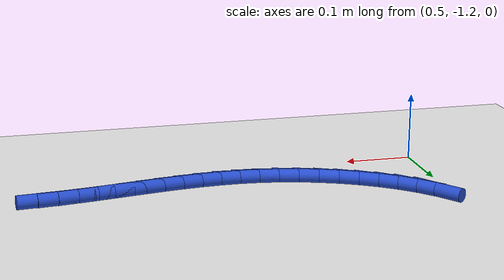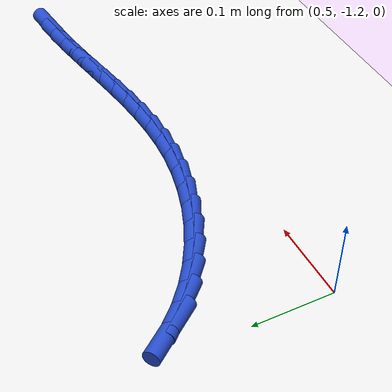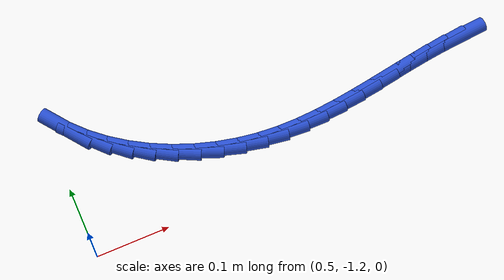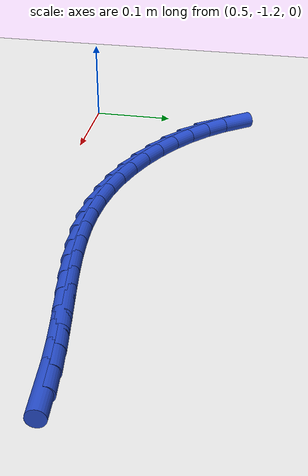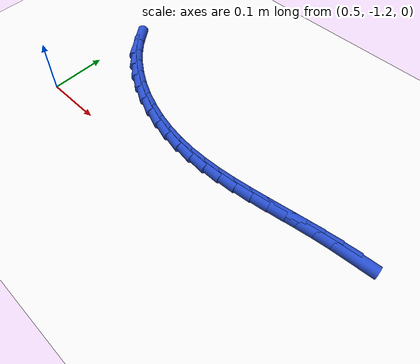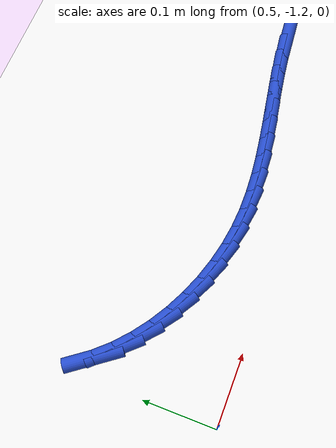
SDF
<sdf version="1.6">
 <world name="default">
  <model name="ground_plane">
   <static>1</static>
   <link name="link">
    <collision name="collision">
     <geometry><plane><normal>0 0 1</normal><size>100 100</size></plane></geometry>
     <surface><friction><ode><mu>100</mu><mu2>50</mu2></ode></friction></surface>
    </collision>
    <visual name="visual">
     <cast_shadows>0</cast_shadows>
     <geometry><plane><normal>0 0 1</normal><size>100 100</size></plane></geometry>
     <material>
      <script><uri>file://media/materials/scripts/gazebo.material</uri><name>Gazebo/WhiteGlow</name></script>
     </material>
    </visual>
   </link>
  </model>
  <model name="line">
   <link name="link_188">
    <pose>1.0640846795764591 -1.1077722152882674 0.01 0 1.57 0.09088600178099855</pose>
    <collision name="collision">
     <geometry><cylinder><radius>0.01</radius><length>0.08</length></cylinder></geometry>
    </collision>
    <visual name="visual">
     <material>
      <script><name>Gazebo/Blue</name><uri>file://media/materials/scripts/gazebo.material</uri></script>
     </material>
     <geometry><cylinder><radius>0.01</radius><length>0.08</length></cylinder></geometry>
    </visual>
   </link>
   <link name="link_189">
    <pose>1.0360324751796497 -1.1103288112535654 0.01 0 1.57 0.12842844171375226</pose>
    <collision name="collision">
     <geometry><cylinder><radius>0.01</radius><length>0.08</length></cylinder></geometry>
    </collision>
    <visual name="visual">
     <material>
      <script><name>Gazebo/Blue</name><uri>file://media/materials/scripts/gazebo.material</uri></script>
     </material>
     <geometry><cylinder><radius>0.01</radius><length>0.08</length></cylinder></geometry>
    </visual>
   </link>
   <link name="link_190">
    <pose>1.0080140763696395 -1.1139470855696851 0.01 0 1.57 0.15380869001264336</pose>
    <collision name="collision">
     <geometry><cylinder><radius>0.01</radius><length>0.08</length></cylinder></geometry>
    </collision>
    <visual name="visual">
     <material>
      <script><name>Gazebo/Blue</name><uri>file://media/materials/scripts/gazebo.material</uri></script>
     </material>
     <geometry><cylinder><radius>0.01</radius><length>0.08</length></cylinder></geometry>
    </visual>
   </link>
   <link name="link_191">
    <pose>0.9800109967456073 -1.1182884917239075 0.01 0 1.57 0.16717284118060377</pose>
    <collision name="collision">
     <geometry><cylinder><radius>0.01</radius><length>0.08</length></cylinder></geometry>
    </collision>
    <visual name="visual">
     <material>
      <script><name>Gazebo/Blue</name><uri>file://media/materials/scripts/gazebo.material</uri></script>
     </material>
     <geometry><cylinder><radius>0.01</radius><length>0.08</length></cylinder></geometry>
    </visual>
   </link>
   <link name="link_192">
    <pose>0.9520047499067309 -1.1230144832035118 0.01 0 1.57 0.16864284198568388</pose>
    <collision name="collision">
     <geometry><cylinder><radius>0.01</radius><length>0.08</length></cylinder></geometry>
    </collision>
    <visual name="visual">
     <material>
      <script><name>Gazebo/Blue</name><uri>file://media/materials/scripts/gazebo.material</uri></script>
     </material>
     <geometry><cylinder><radius>0.01</radius><length>0.08</length></cylinder></geometry>
    </visual>
   </link>
   <link name="link_193">
    <pose>0.9239768494521892 -1.1277865134957785 0.01 0 1.57 0.1582604740779535</pose>
    <collision name="collision">
     <geometry><cylinder><radius>0.01</radius><length>0.08</length></cylinder></geometry>
    </collision>
    <visual name="visual">
     <material>
      <script><name>Gazebo/Blue</name><uri>file://media/materials/scripts/gazebo.material</uri></script>
     </material>
     <geometry><cylinder><radius>0.01</radius><length>0.08</length></cylinder></geometry>
    </visual>
   </link>
   <link name="link_194">
    <pose>0.89590880898116 -1.1322660360879873 0.01 0 1.57 0.1359819248267036</pose>
    <collision name="collision">
     <geometry><cylinder><radius>0.01</radius><length>0.08</length></cylinder></geometry>
    </collision>
    <visual name="visual">
     <material>
      <script><name>Gazebo/Blue</name><uri>file://media/materials/scripts/gazebo.material</uri></script>
     </material>
     <geometry><cylinder><radius>0.01</radius><length>0.08</length></cylinder></geometry>
    </visual>
   </link>
   <link name="link_195">
    <pose>0.8677821420928222 -1.1361145044674186 0.01 0 1.57 0.10172151946475533</pose>
    <collision name="collision">
     <geometry><cylinder><radius>0.01</radius><length>0.08</length></cylinder></geometry>
    </collision>
    <visual name="visual">
     <material>
      <script><name>Gazebo/Blue</name><uri>file://media/materials/scripts/gazebo.material</uri></script>
     </material>
     <geometry><cylinder><radius>0.01</radius><length>0.08</length></cylinder></geometry>
    </visual>
   </link>
   <link name="link_196">
    <pose>0.839578362386353 -1.1389933721213519 0.01 0 1.57 0.055446815355621897</pose>
    <collision name="collision">
     <geometry><cylinder><radius>0.01</radius><length>0.08</length></cylinder></geometry>
    </collision>
    <visual name="visual">
     <material>
      <script><name>Gazebo/Blue</name><uri>file://media/materials/scripts/gazebo.material</uri></script>
     </material>
     <geometry><cylinder><radius>0.01</radius><length>0.08</length></cylinder></geometry>
    </visual>
   </link>
   <link name="link_197">
    <pose>0.8112789834609316 -1.1405640925370673 0.01 0 1.57 -0.0026738433831520986</pose>
    <collision name="collision">
     <geometry><cylinder><radius>0.01</radius><length>0.08</length></cylinder></geometry>
    </collision>
    <visual name="visual">
     <material>
      <script><name>Gazebo/Blue</name><uri>file://media/materials/scripts/gazebo.material</uri></script>
     </material>
     <geometry><cylinder><radius>0.01</radius><length>0.08</length></cylinder></geometry>
    </visual>
   </link>
   <link name="link_198">
    <pose>0.7828655189157359 -1.140488119201845 0.01 0 1.57 -0.07208154824158294</pose>
    <collision name="collision">
     <geometry><cylinder><radius>0.01</radius><length>0.08</length></cylinder></geometry>
    </collision>
    <visual name="visual">
     <material>
      <script><name>Gazebo/Blue</name><uri>file://media/materials/scripts/gazebo.material</uri></script>
     </material>
     <geometry><cylinder><radius>0.01</radius><length>0.08</length></cylinder></geometry>
    </visual>
   </link>
   <link name="link_199">
    <pose>0.7543194823499441 -1.1384269056029648 0.01 0 1.57 -0.1502390906266316</pose>
    <collision name="collision">
     <geometry><cylinder><radius>0.01</radius><length>0.08</length></cylinder></geometry>
    </collision>
    <visual name="visual">
     <material>
      <script><name>Gazebo/Blue</name><uri>file://media/materials/scripts/gazebo.material</uri></script>
     </material>
     <geometry><cylinder><radius>0.01</radius><length>0.08</length></cylinder></geometry>
    </visual>
   </link>
   <link name="link_200">
    <pose>0.7256597438682064 -1.1340884007311332 0.01 0 1.57 -0.2286892471015421</pose>
    <collision name="collision">
     <geometry><cylinder><radius>0.01</radius><length>0.08</length></cylinder></geometry>
    </collision>
    <visual name="visual">
     <material>
      <script><name>Gazebo/Blue</name><uri>file://media/materials/scripts/gazebo.material</uri></script>
     </material>
     <geometry><cylinder><radius>0.01</radius><length>0.08</length></cylinder></geometry>
    </visual>
   </link>
   <link name="link_201">
    <pose>0.6971175498465622 -1.1274448861619517 0.01 0 1.57 -0.30599026933344364</pose>
    <collision name="collision">
     <geometry><cylinder><radius>0.01</radius><length>0.08</length></cylinder></geometry>
    </collision>
    <visual name="visual">
     <material>
      <script><name>Gazebo/Blue</name><uri>file://media/materials/scripts/gazebo.material</uri></script>
     </material>
     <geometry><cylinder><radius>0.01</radius><length>0.08</length></cylinder></geometry>
    </visual>
   </link>
   <link name="link_202">
    <pose>0.6689990970491103 -1.1185619299275797 0.01 0 1.57 -0.3836924240826272</pose>
    <collision name="collision">
     <geometry><cylinder><radius>0.01</radius><length>0.08</length></cylinder></geometry>
    </collision>
    <visual name="visual">
     <material>
      <script><name>Gazebo/Blue</name><uri>file://media/materials/scripts/gazebo.material</uri></script>
     </material>
     <geometry><cylinder><radius>0.01</radius><length>0.08</length></cylinder></geometry>
    </visual>
   </link>
   <link name="link_203">
    <pose>0.6416106673417047 -1.1075052059814579 0.01 0 1.57 -0.463306184069144</pose>
    <collision name="collision">
     <geometry><cylinder><radius>0.01</radius><length>0.08</length></cylinder></geometry>
    </collision>
    <visual name="visual">
     <material>
      <script><name>Gazebo/Blue</name><uri>file://media/materials/scripts/gazebo.material</uri></script>
     </material>
     <geometry><cylinder><radius>0.01</radius><length>0.08</length></cylinder></geometry>
    </visual>
   </link>
   <link name="link_204">
    <pose>0.6152585425901993 -1.094340388277027 0.01 0 1.57 -0.5463230895427258</pose>
    <collision name="collision">
     <geometry><cylinder><radius>0.01</radius><length>0.08</length></cylinder></geometry>
    </collision>
    <visual name="visual">
     <material>
      <script><name>Gazebo/Blue</name><uri>file://media/materials/scripts/gazebo.material</uri></script>
     </material>
     <geometry><cylinder><radius>0.01</radius><length>0.08</length></cylinder></geometry>
    </visual>
   </link>
   <link name="link_205">
    <pose>0.5902490046604475 -1.0791331507677273 0.01 0 1.57 -0.6342177605602954</pose>
    <collision name="collision">
     <geometry><cylinder><radius>0.01</radius><length>0.08</length></cylinder></geometry>
    </collision>
    <visual name="visual">
     <material>
      <script><name>Gazebo/Blue</name><uri>file://media/materials/scripts/gazebo.material</uri></script>
     </material>
     <geometry><cylinder><radius>0.01</radius><length>0.08</length></cylinder></geometry>
    </visual>
   </link>
   <link name="link_206">
    <pose>0.5668883354183033 -1.0619491674069998 0.01 0 1.57 -0.728412257549909</pose>
    <collision name="collision">
     <geometry><cylinder><radius>0.01</radius><length>0.08</length></cylinder></geometry>
    </collision>
    <visual name="visual">
     <material>
      <script><name>Gazebo/Blue</name><uri>file://media/materials/scripts/gazebo.material</uri></script>
     </material>
     <geometry><cylinder><radius>0.01</radius><length>0.08</length></cylinder></geometry>
    </visual>
   </link>
   <link name="link_207">
    <pose>0.5454828167296205 -1.0428541121482846 0.01 0 1.57 -0.8301826572510387</pose>
    <collision name="collision">
     <geometry><cylinder><radius>0.01</radius><length>0.08</length></cylinder></geometry>
    </collision>
    <visual name="visual">
     <material>
      <script><name>Gazebo/Blue</name><uri>file://media/materials/scripts/gazebo.material</uri></script>
     </material>
     <geometry><cylinder><radius>0.01</radius><length>0.08</length></cylinder></geometry>
    </visual>
   </link>
   <link name="link_208">
    <pose>0.5263387304602525 -1.0219136589450228 0.01 0 1.57 -0.940229804602054</pose>
    <collision name="collision">
     <geometry><cylinder><radius>0.01</radius><length>0.08</length></cylinder></geometry>
    </collision>
    <visual name="visual">
     <material>
      <script><name>Gazebo/Blue</name><uri>file://media/materials/scripts/gazebo.material</uri></script>
     </material>
     <geometry><cylinder><radius>0.01</radius><length>0.08</length></cylinder></geometry>
    </visual>
   </link>
  </model>
 </world>
</sdf>
